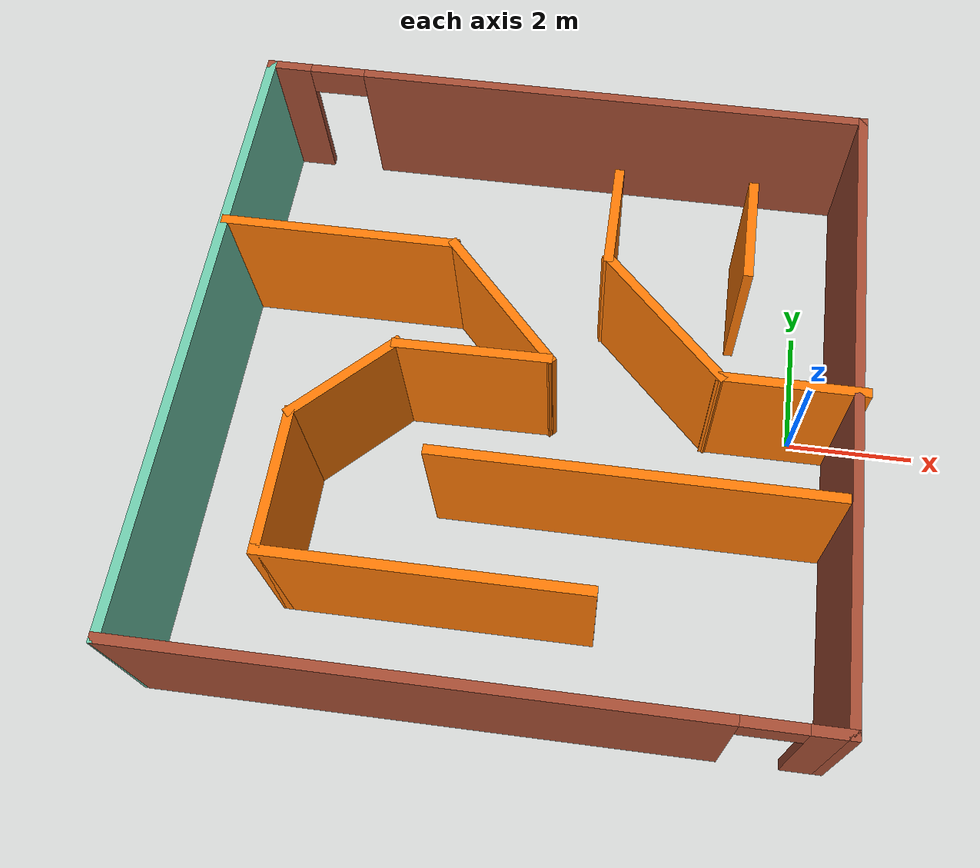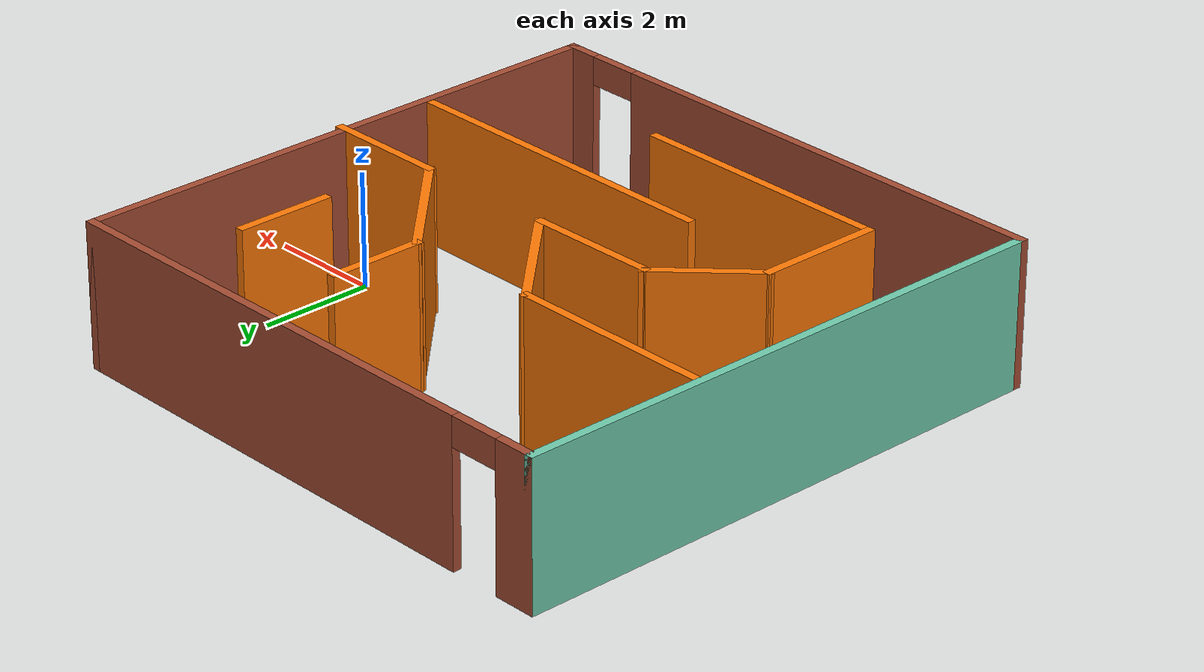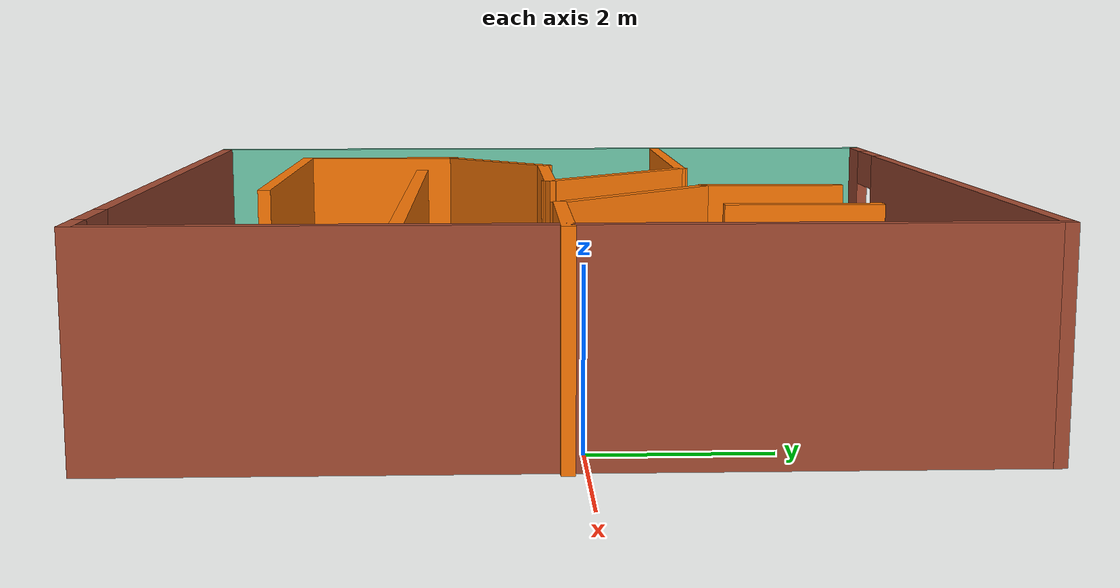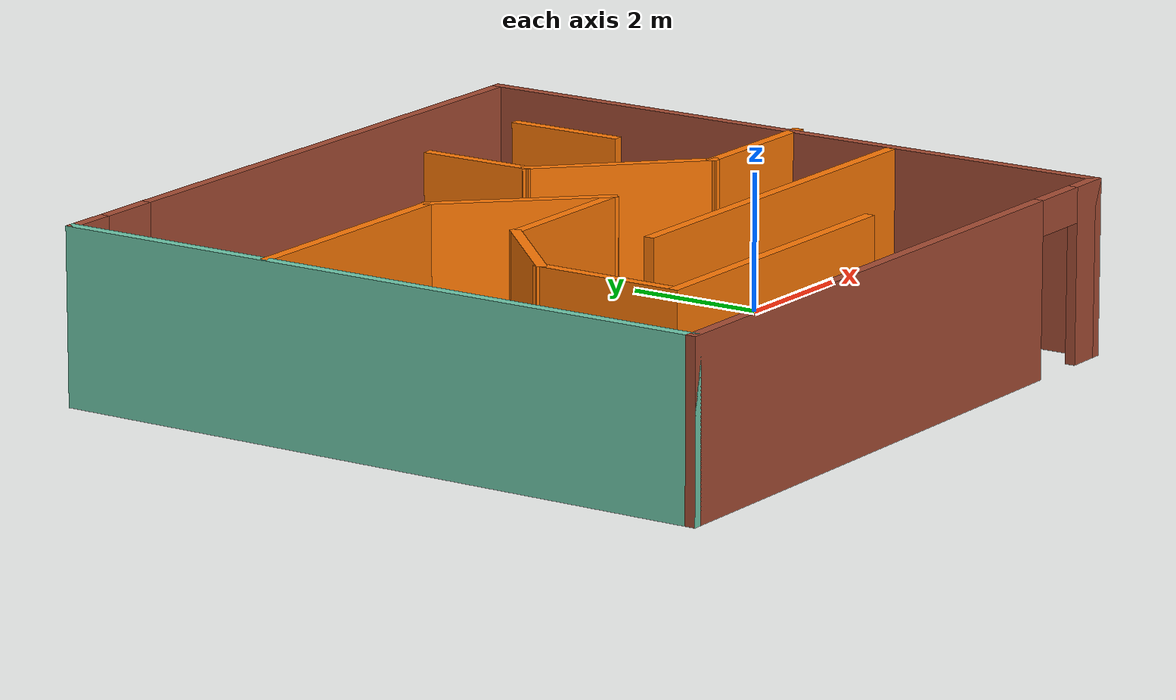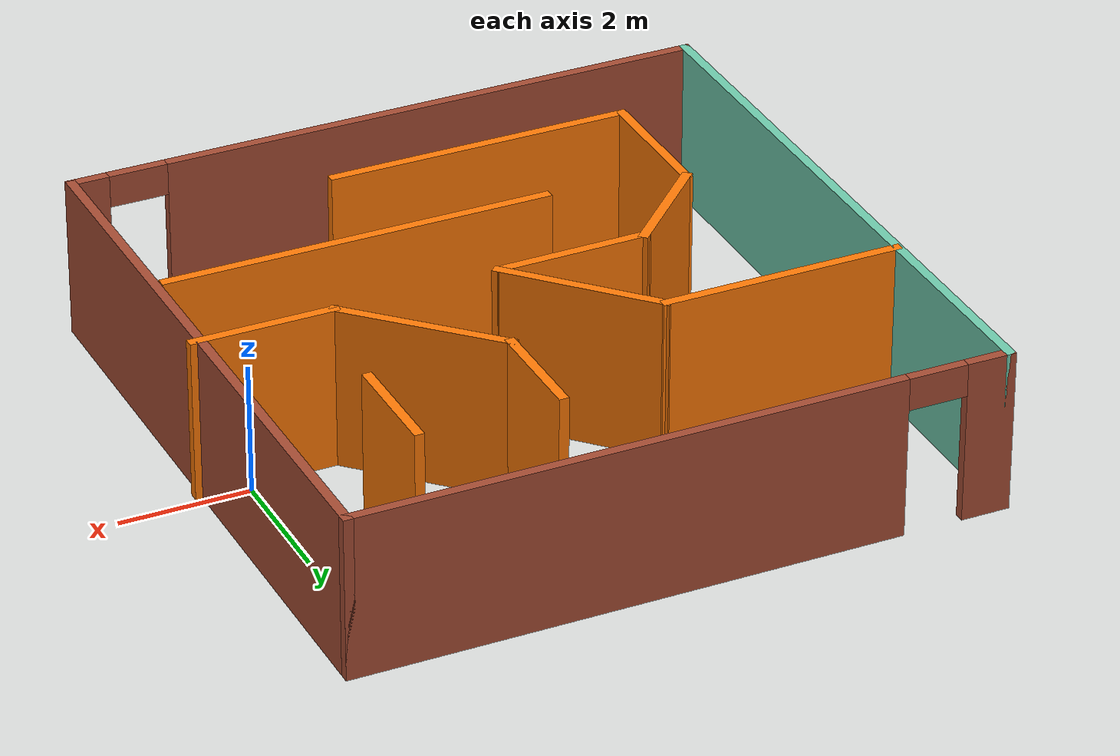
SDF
<?xml version='1.0'?>
<sdf version='1.6'>
  <model name='maze2'>
    <pose frame=''>-4.25249 -0.144588 0 0 -0 0</pose>
    <link name='Wall_1'>
      <collision name='Wall_1_Collision'>
        <geometry>
          <box>
            <size>10 0.15 2.5</size>
          </box>
        </geometry>
        <pose frame=''>0 0 1.25 0 -0 0</pose>
      </collision>
      <visual name='Wall_1_Visual'>
        <pose frame=''>0 0 1.25 0 -0 0</pose>
        <geometry>
          <box>
            <size>10 0.15 2.5</size>
          </box>
        </geometry>
        <material>
          <script>
            <uri>file://media/materials/scripts/gazebo.material</uri>
            <name>Gazebo/Grey</name>
          </script>
          <ambient>0.435294 0.796078 0.67451 1</ambient>
        </material>
        <meta>
          <layer>0</layer>
        </meta>
      </visual>
      <pose frame=''>-4.97763 0 0 0 -0 1.5708</pose>
    </link>
    <link name='Wall_10'>
      <collision name='Wall_10_Collision'>
        <geometry>
          <box>
            <size>3.75 0.15 2.5</size>
          </box>
        </geometry>
        <pose frame=''>0 0 1.25 0 -0 0</pose>
      </collision>
      <visual name='Wall_10_Visual'>
        <pose frame=''>0 0 1.25 0 -0 0</pose>
        <geometry>
          <box>
            <size>3.75 0.15 2.5</size>
          </box>
        </geometry>
        <material>
          <script>
            <uri>file://media/materials/scripts/gazebo.material</uri>
            <name>Gazebo/Grey</name>
          </script>
          <ambient>0.996078 0.47451 0.0196078 1</ambient>
        </material>
        <meta>
          <layer>0</layer>
        </meta>
      </visual>
      <pose frame=''>-3.14289 1.74834 0 0 -0 0</pose>
    </link>
    <link name='Wall_11'>
      <collision name='Wall_11_Collision'>
        <geometry>
          <box>
            <size>2.64896 0.15 2.5</size>
          </box>
        </geometry>
        <pose frame=''>0 0 1.25 0 -0 0</pose>
      </collision>
      <visual name='Wall_11_Visual'>
        <pose frame=''>0 0 1.25 0 -0 0</pose>
        <geometry>
          <box>
            <size>2.64896 0.15 2.5</size>
          </box>
        </geometry>
        <material>
          <script>
            <uri>file://media/materials/scripts/gazebo.material</uri>
            <name>Gazebo/Grey</name>
          </script>
          <ambient>0.996078 0.47451 0.0196078 1</ambient>
        </material>
        <meta>
          <layer>0</layer>
        </meta>
      </visual>
      <pose frame=''>-0.486358 0.838638 0 0 0 -0.815498</pose>
    </link>
    <link name='Wall_12'>
      <collision name='Wall_12_Collision'>
        <geometry>
          <box>
            <size>2.39334 0.15 2.5</size>
          </box>
        </geometry>
        <pose frame=''>0 0 1.25 0 -0 0</pose>
      </collision>
      <visual name='Wall_12_Visual'>
        <pose frame=''>0 0 1.25 0 -0 0</pose>
        <geometry>
          <box>
            <size>2.39334 0.15 2.5</size>
          </box>
        </geometry>
        <material>
          <script>
            <uri>file://media/materials/scripts/gazebo.material</uri>
            <name>Gazebo/Grey</name>
          </script>
          <ambient>0.996078 0.47451 0.0196078 1</ambient>
        </material>
        <meta>
          <layer>0</layer>
        </meta>
      </visual>
      <pose frame=''>-0.782032 -0.082632 0 0 0 -3.13128</pose>
    </link>
    <link name='Wall_14'>
      <collision name='Wall_14_Collision'>
        <geometry>
          <box>
            <size>6 0.15 2.5</size>
          </box>
        </geometry>
        <pose frame=''>0 0 1.25 0 -0 0</pose>
      </collision>
      <visual name='Wall_14_Visual'>
        <pose frame=''>0 0 1.25 0 -0 0</pose>
        <geometry>
          <box>
            <size>6 0.15 2.5</size>
          </box>
        </geometry>
        <material>
          <script>
            <uri>file://media/materials/scripts/gazebo.material</uri>
            <name>Gazebo/Grey</name>
          </script>
          <ambient>0.996078 0.47451 0.0196078 1</ambient>
        </material>
        <meta>
          <layer>0</layer>
        </meta>
      </visual>
      <pose frame=''>1.78307 -1.72915 0 0 -0 0</pose>
    </link>
    <link name='Wall_16'>
      <collision name='Wall_16_Collision'>
        <geometry>
          <box>
            <size>2.75 0.15 2.5</size>
          </box>
        </geometry>
        <pose frame=''>0 0 1.25 0 -0 0</pose>
      </collision>
      <visual name='Wall_16_Visual'>
        <pose frame=''>0 0 1.25 0 -0 0</pose>
        <geometry>
          <box>
            <size>2.75 0.15 2.5</size>
          </box>
        </geometry>
        <material>
          <script>
            <uri>file://media/materials/scripts/gazebo.material</uri>
            <name>Gazebo/Grey</name>
          </script>
          <ambient>0.996078 0.47451 0.0196078 1</ambient>
        </material>
        <meta>
          <layer>0</layer>
        </meta>
      </visual>
      <pose frame=''>1.95839 0.869485 0 0 0 -0.785398</pose>
    </link>
    <link name='Wall_17'>
      <collision name='Wall_17_Collision'>
        <geometry>
          <box>
            <size>2.25 0.15 2.5</size>
          </box>
        </geometry>
        <pose frame=''>0 0 1.25 0 -0 0</pose>
      </collision>
      <visual name='Wall_17_Visual'>
        <pose frame=''>0 0 1.25 0 -0 0</pose>
        <geometry>
          <box>
            <size>2.25 0.15 2.5</size>
          </box>
        </geometry>
        <material>
          <script>
            <uri>file://media/materials/scripts/gazebo.material</uri>
            <name>Gazebo/Grey</name>
          </script>
          <ambient>0.996078 0.47451 0.0196078 1</ambient>
        </material>
        <meta>
          <layer>0</layer>
        </meta>
      </visual>
      <pose frame=''>3.92763 -0.049754 0 0 -0 0</pose>
    </link>
    <link name='Wall_19'>
      <collision name='Wall_19_Collision'>
        <geometry>
          <box>
            <size>1.75 0.15 2.5</size>
          </box>
        </geometry>
        <pose frame=''>0 0 1.25 0 -0 0</pose>
      </collision>
      <visual name='Wall_19_Visual'>
        <pose frame=''>0 0 1.25 0 -0 0</pose>
        <geometry>
          <box>
            <size>1.75 0.15 2.5</size>
          </box>
        </geometry>
        <material>
          <script>
            <uri>file://media/materials/scripts/gazebo.material</uri>
            <name>Gazebo/Grey</name>
          </script>
          <ambient>0.996078 0.47451 0.0196078 1</ambient>
        </material>
        <meta>
          <layer>0</layer>
        </meta>
      </visual>
      <pose frame=''>1.03915 2.58872 0 0 -0 1.5708</pose>
    </link>
    <link name='Wall_22'>
      <collision name='Wall_22_Collision'>
        <geometry>
          <box>
            <size>1.75 0.15 2.5</size>
          </box>
        </geometry>
        <pose frame=''>0 0 1.25 0 -0 0</pose>
      </collision>
      <visual name='Wall_22_Visual'>
        <pose frame=''>0 0 1.25 0 -0 0</pose>
        <geometry>
          <box>
            <size>1.75 0.15 2.5</size>
          </box>
        </geometry>
        <material>
          <script>
            <uri>file://media/materials/scripts/gazebo.material</uri>
            <name>Gazebo/Grey</name>
          </script>
          <ambient>0.996078 0.47451 0.0196078 1</ambient>
        </material>
        <meta>
          <layer>0</layer>
        </meta>
      </visual>
      <pose frame=''>3.17366 2.59721 0 0 0 -1.5708</pose>
    </link>
    <link name='Wall_24'>
      <collision name='Wall_24_Collision'>
        <geometry>
          <box>
            <size>2 0.15 2.5</size>
          </box>
        </geometry>
        <pose frame=''>0 0 1.25 0 -0 0</pose>
      </collision>
      <visual name='Wall_24_Visual'>
        <pose frame=''>0 0 1.25 0 -0 0</pose>
        <geometry>
          <box>
            <size>2 0.15 2.5</size>
          </box>
        </geometry>
        <material>
          <script>
            <uri>file://media/materials/scripts/gazebo.material</uri>
            <name>Gazebo/Grey</name>
          </script>
          <ambient>0.996078 0.47451 0.0196078 1</ambient>
        </material>
        <meta>
          <layer>0</layer>
        </meta>
      </visual>
      <pose frame=''>-2.55772 -0.725141 0 0 0 -2.35619</pose>
    </link>
    <link name='Wall_27'>
      <collision name='Wall_27_Collision'>
        <geometry>
          <box>
            <size>2.25 0.15 2.5</size>
          </box>
        </geometry>
        <pose frame=''>0 0 1.25 0 -0 0</pose>
      </collision>
      <visual name='Wall_27_Visual'>
        <pose frame=''>0 0 1.25 0 -0 0</pose>
        <geometry>
          <box>
            <size>2.25 0.15 2.5</size>
          </box>
        </geometry>
        <material>
          <script>
            <uri>file://media/materials/scripts/gazebo.material</uri>
            <name>Gazebo/Grey</name>
          </script>
          <ambient>0.996078 0.47451 0.0196078 1</ambient>
        </material>
        <meta>
          <layer>0</layer>
        </meta>
      </visual>
      <pose frame=''>-3.21179 -2.42921 0 0 0 -1.5708</pose>
    </link>
    <link name='Wall_28'>
      <collision name='Wall_28_Collision'>
        <geometry>
          <box>
            <size>4.75 0.15 2.5</size>
          </box>
        </geometry>
        <pose frame=''>0 0 1.25 0 -0 0</pose>
      </collision>
      <visual name='Wall_28_Visual'>
        <pose frame=''>0 0 1.25 0 -0 0</pose>
        <geometry>
          <box>
            <size>4.75 0.15 2.5</size>
          </box>
        </geometry>
        <material>
          <script>
            <uri>file://media/materials/scripts/gazebo.material</uri>
            <name>Gazebo/Grey</name>
          </script>
          <ambient>0.996078 0.47451 0.0196078 1</ambient>
        </material>
        <meta>
          <layer>0</layer>
        </meta>
      </visual>
      <pose frame=''>-0.91179 -3.47921 0 0 -0 0</pose>
    </link>
    <link name='Wall_5'>
      <pose frame=''>-0.05263 -4.925 0 0 -0 0</pose>
      <visual name='Wall_5_Visual_0'>
        <pose frame=''>-0.765135 0 1.25 0 -0 0</pose>
        <geometry>
          <box>
            <size>8.46973 0.15 2.5</size>
          </box>
        </geometry>
        <material>
          <script>
            <uri>file://media/materials/scripts/gazebo.material</uri>
            <name>Gazebo/Bricks</name>
          </script>
          <ambient>0.996078 0.47451 0.0196078 1</ambient>
        </material>
        <meta>
          <layer>0</layer>
        </meta>
      </visual>
      <collision name='Wall_5_Collision_0'>
        <geometry>
          <box>
            <size>8.46973 0.15 2.5</size>
          </box>
        </geometry>
        <pose frame=''>-0.765135 0 1.25 0 -0 0</pose>
      </collision>
      <visual name='Wall_5_Visual_1'>
        <pose frame=''>4.68487 0 1.25 0 -0 0</pose>
        <geometry>
          <box>
            <size>0.630269 0.15 2.5</size>
          </box>
        </geometry>
        <material>
          <script>
            <uri>file://media/materials/scripts/gazebo.material</uri>
            <name>Gazebo/Bricks</name>
          </script>
          <ambient>0.996078 0.47451 0.0196078 1</ambient>
        </material>
        <meta>
          <layer>0</layer>
        </meta>
      </visual>
      <collision name='Wall_5_Collision_1'>
        <geometry>
          <box>
            <size>0.630269 0.15 2.5</size>
          </box>
        </geometry>
        <pose frame=''>4.68487 0 1.25 0 -0 0</pose>
      </collision>
      <visual name='Wall_5_Visual_2'>
        <pose frame=''>3.91973 0 2.25 0 -0 0</pose>
        <geometry>
          <box>
            <size>0.9 0.15 0.5</size>
          </box>
        </geometry>
        <material>
          <script>
            <uri>file://media/materials/scripts/gazebo.material</uri>
            <name>Gazebo/Bricks</name>
          </script>
          <ambient>0.996078 0.47451 0.0196078 1</ambient>
        </material>
        <meta>
          <layer>0</layer>
        </meta>
      </visual>
      <collision name='Wall_5_Collision_2'>
        <geometry>
          <box>
            <size>0.9 0.15 0.5</size>
          </box>
        </geometry>
        <pose frame=''>3.91973 0 2.25 0 -0 0</pose>
      </collision>
    </link>
    <link name='Wall_6'>
      <collision name='Wall_6_Collision'>
        <geometry>
          <box>
            <size>10 0.15 2.5</size>
          </box>
        </geometry>
        <pose frame=''>0 0 1.25 0 -0 0</pose>
      </collision>
      <visual name='Wall_6_Visual'>
        <pose frame=''>0 0 1.25 0 -0 0</pose>
        <geometry>
          <box>
            <size>10 0.15 2.5</size>
          </box>
        </geometry>
        <material>
          <script>
            <uri>file://media/materials/scripts/gazebo.material</uri>
            <name>Gazebo/Bricks</name>
          </script>
          <ambient>0.435294 0.796078 0.67451 1</ambient>
        </material>
        <meta>
          <layer>0</layer>
        </meta>
      </visual>
      <pose frame=''>4.87237 0 0 0 -0 1.5708</pose>
    </link>
    <link name='Wall_8'>
      <pose frame=''>-0.05263 4.925 0 0 -0 0</pose>
      <visual name='Wall_8_Visual_0'>
        <pose frame=''>-4.62594 0 1.25 0 -0 0</pose>
        <geometry>
          <box>
            <size>0.748123 0.15 2.5</size>
          </box>
        </geometry>
        <material>
          <script>
            <uri>file://media/materials/scripts/gazebo.material</uri>
            <name>Gazebo/Bricks</name>
          </script>
          <ambient>0.996078 0.47451 0.0196078 1</ambient>
        </material>
        <meta>
          <layer>0</layer>
        </meta>
      </visual>
      <collision name='Wall_8_Collision_0'>
        <geometry>
          <box>
            <size>0.748123 0.15 2.5</size>
          </box>
        </geometry>
        <pose frame=''>-4.62594 0 1.25 0 -0 0</pose>
      </collision>
      <visual name='Wall_8_Visual_1'>
        <pose frame=''>0.824061 0 1.25 0 -0 0</pose>
        <geometry>
          <box>
            <size>8.35188 0.15 2.5</size>
          </box>
        </geometry>
        <material>
          <script>
            <uri>file://media/materials/scripts/gazebo.material</uri>
            <name>Gazebo/Bricks</name>
          </script>
          <ambient>0.996078 0.47451 0.0196078 1</ambient>
        </material>
        <meta>
          <layer>0</layer>
        </meta>
      </visual>
      <collision name='Wall_8_Collision_1'>
        <geometry>
          <box>
            <size>8.35188 0.15 2.5</size>
          </box>
        </geometry>
        <pose frame=''>0.824061 0 1.25 0 -0 0</pose>
      </collision>
      <visual name='Wall_8_Visual_2'>
        <pose frame=''>-3.80188 0 2.25 0 -0 0</pose>
        <geometry>
          <box>
            <size>0.9 0.15 0.5</size>
          </box>
        </geometry>
        <material>
          <script>
            <uri>file://media/materials/scripts/gazebo.material</uri>
            <name>Gazebo/Bricks</name>
          </script>
          <ambient>0.996078 0.47451 0.0196078 1</ambient>
        </material>
        <meta>
          <layer>0</layer>
        </meta>
      </visual>
      <collision name='Wall_8_Collision_2'>
        <geometry>
          <box>
            <size>0.9 0.15 0.5</size>
          </box>
        </geometry>
        <pose frame=''>-3.80188 0 2.25 0 -0 0</pose>
      </collision>
    </link>
    <static>1</static>
  </model>
</sdf>
